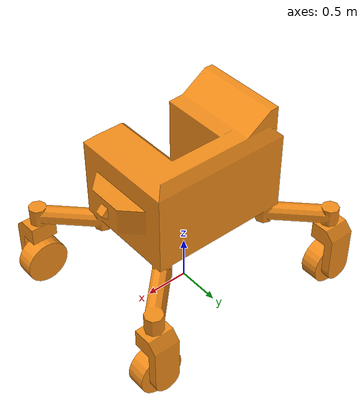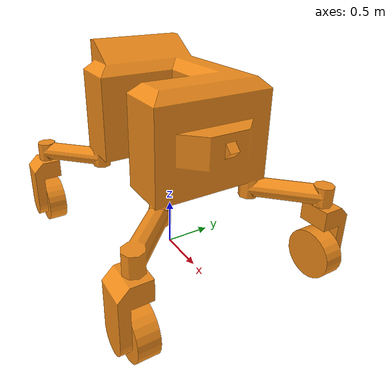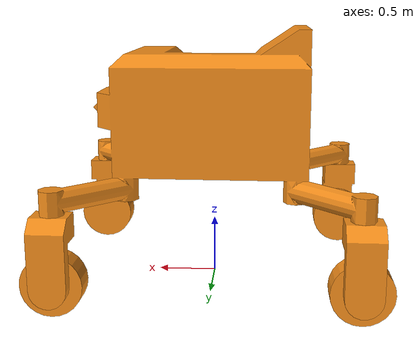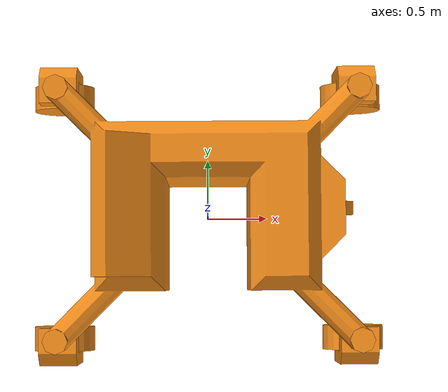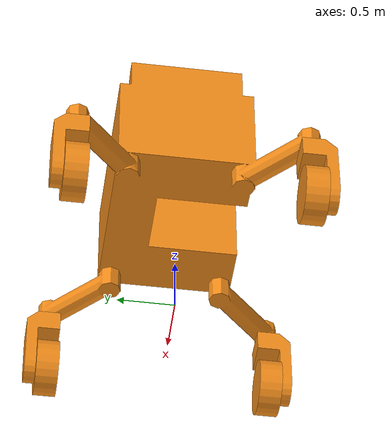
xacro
<robot name="bonirob_simple" xmlns:xacro="http://ros.org/wiki/xacro">
	<xacro:include filename="$(find mr_project)/urdf/bonirob_properties.xacro" />
	<xacro:include filename="$(find mr_project)/urdf/model/bonirob_simple.xacro" />
	<xacro:include filename="$(find mr_project)/urdf/sensor/3d_lidar.xacro"/>
</robot>

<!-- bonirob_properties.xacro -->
<robot name="bonirob_simple" xmlns:xacro="http://ros.org/wiki/xacro">

  <xacro:property name="scale_factor" value="0.8"/>
  <xacro:property name="base_x" value="2.4"/>
  <xacro:property name="base_y" value="2"/>
  <xacro:property name="base_z" value="1"/>
  <xacro:property name="wheel_pad_x" value="0.3"/>
  <xacro:property name="wheel_pad_y" value="0.2"/>
  <xacro:property name="wheel_pad_z" value="0.2"/>
  <xacro:property name="wheel_r" value="0.25"/>
  <xacro:property name="wheel_l" value="0.2"/>

  <xacro:property name="wheel_pad_clearance" value="0.1"/>
  <xacro:property name="ground_clearance" value="${2*wheel_r + wheel_pad_clearance + 2*wheel_pad_z}"/>
  <xacro:property name="init_center_height" value="${ground_clearance + base_z/2}"/>

  <xacro:property name="base_mass" value="60" />
  <xacro:property name="wheel_pad_mass" value="5" />
  <xacro:property name="wheel_mass" value="5" />

  <xacro:property name="wheel_pad_origin_z" value="${-base_z/2 -1.5*wheel_pad_z}"/>
  <xacro:property name="wheel_origin_z" value="${-wheel_pad_z/2 -wheel_r -wheel_pad_clearance}"/>

  <xacro:property name="lidar_x" value="1" />
  <xacro:property name="lidar_pitch" value="0.7854" />
</robot>

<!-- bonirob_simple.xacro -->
<robot name="bonirob_simple" xmlns:xacro="http://ros.org/wiki/xacro">

  <xacro:include filename="$(find mr_project)/urdf/bonirob_simple.gazebo" />

   <link name="base_footprint"/>

    <joint name="base_joint" type="fixed">
      <origin xyz="0 0 ${init_center_height}" rpy="0 0 0"/>
      <parent link="base_footprint"/>
      <child link="chassis"/>
    </joint>

  <!-- models -->
  <xacro:include filename="$(find mr_project)/urdf/model/chassis.xacro" />
  <xacro:include filename="$(find mr_project)/urdf/model/wheel_pad.xacro" />
  <xacro:include filename="$(find mr_project)/urdf/model/wheel.xacro" />

  <!-- joints -->
  <xacro:include filename="$(find mr_project)/urdf/model/steering_joints.xacro" />
  <xacro:include filename="$(find mr_project)/urdf/model/wheel_joints.xacro" />

  <!-- base_link -->
  <link name="chassis"> <xacro:chassis/> </link>

  <!-- wheel_pad -->
  <link name="wheel_pad_FR"> <xacro:wheel_pad yaw="0"/>      </link>
  <link name="wheel_pad_FL"> <xacro:wheel_pad yaw="${pi}"/> </link>
  <link name="wheel_pad_BR"> <xacro:wheel_pad yaw="0"/>      </link>
  <link name="wheel_pad_BL"> <xacro:wheel_pad yaw="${pi}"/> </link>

  <!-- wheel -->
  <link name="wheel_FR"> <xacro:wheel/> </link>
  <link name="wheel_FL"> <xacro:wheel/> </link>
  <link name="wheel_BR"> <xacro:wheel/> </link>
  <link name="wheel_BL"> <xacro:wheel/> </link>

  <!-- transmossions -->
  <xacro:macro name="transmission_block" params="trans_name joint_name">
    <transmission name="${trans_name}">
      <type>transmission_interface/SimpleTransmission</type>
      <joint name="${joint_name}">
        <hardwareInterface>hardware_interface/EffortJointInterface</hardwareInterface>
      </joint>
      <actuator name="motor">
        <hardwareInterface>hardware_interface/EffortJointInterface</hardwareInterface>
        <mechanicalReduction>1</mechanicalReduction>
      </actuator>
    </transmission>
  </xacro:macro>

   <xacro:transmission_block trans_name="trans1" joint_name="steering_FR"/>
   <xacro:transmission_block trans_name="trans1" joint_name="steering_FL"/>
   <xacro:transmission_block trans_name="trans1" joint_name="steering_BR"/>
   <xacro:transmission_block trans_name="trans1" joint_name="steering_BL"/>

   <xacro:transmission_block trans_name="trans2" joint_name="wheel_FR"/>
   <xacro:transmission_block trans_name="trans2" joint_name="wheel_FL"/>
   <xacro:transmission_block trans_name="trans2" joint_name="wheel_BR"/>
   <xacro:transmission_block trans_name="trans2" joint_name="wheel_BL"/>

</robot>

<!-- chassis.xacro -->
<robot name="bonirob_simple" xmlns:xacro="http://ros.org/wiki/xacro">

 <xacro:macro name="chassis">
    <collision>
      <origin xyz="0 0 0" rpy="0 0 0"/>
      <geometry>
        <box size="${base_x*scale_factor} ${base_y*scale_factor} ${base_z*scale_factor}"/>
      </geometry>
    </collision>
    <visual>
      <origin xyz="0 0 0" rpy="0 0 0"/>
      <geometry>
       <mesh filename="$(find mr_project)/urdf/model/meshes/br2.stl" scale="0.001 0.001 0.001"/>
      </geometry>
      <material name="orange"/>
    </visual>
    <inertial>
      <origin xyz="0 0 0" rpy="0 0 0"/>
      <mass value="${base_mass}"/>
      <inertia
        ixx="${base_mass / 12.0 * (base_y*base_y + base_z*base_z) * (scale_factor*scale_factor)}" ixy="0.0" ixz="0.0"
        iyy="${base_mass / 12.0 * (base_z*base_z + base_x*base_x) * (scale_factor*scale_factor)}" iyz="0.0"
        izz="${base_mass / 12.0 * (base_x*base_x + base_y*base_y) * (scale_factor*scale_factor)}"/>
    </inertial>
</xacro:macro>
</robot>

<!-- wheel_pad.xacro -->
<robot name="bonirob_simple" xmlns:xacro="http://ros.org/wiki/xacro">
 <xacro:macro name="wheel_pad" params='yaw'>
    <collision>
      <origin xyz="0 0 0" rpy="0 0 0"/>
      <geometry>
        <box size="${wheel_pad_x} ${wheel_pad_y} ${wheel_pad_z}"/>
      </geometry>
    </collision>
    <visual>
      <origin xyz="0 0 0" rpy="0 0 ${yaw}"/>
      <geometry>
        <mesh filename="$(find mr_project)/urdf/model/meshes/wheel_pad.stl" scale="0.001 0.001 0.001"/>
      </geometry>
      <material name="orange"/>
    </visual>
    <inertial>
      <origin xyz="0 0 0" rpy="0 0 0"/>
      <mass value="${wheel_pad_mass}"/>
      <inertia
        ixx="${wheel_pad_mass / 12.0 * (wheel_pad_y*wheel_pad_y + wheel_pad_z*wheel_pad_z)}"
        ixy="0.0" ixz="0.0" iyz="0.0"
        iyy="${wheel_pad_mass / 12.0 * (wheel_pad_z*wheel_pad_z + wheel_pad_x*wheel_pad_x)}"
        izz="${wheel_pad_mass / 12.0 * (wheel_pad_x*wheel_pad_x + wheel_pad_y*wheel_pad_y)}"/>
    </inertial>
</xacro:macro>
</robot>

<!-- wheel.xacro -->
<robot name="bonirob_simple" xmlns:xacro="http://ros.org/wiki/xacro">
 <xacro:macro name="wheel">
    <collision>
      <origin rpy="0 0 0" xyz="0 0 0"/>
      <geometry>
         <cylinder length="${wheel_l}" radius="${wheel_r}"/>
      </geometry>
    </collision>
    <visual>
      <origin rpy="0 0 0" xyz="0 0 0"/>
      <geometry>
         <cylinder length="${wheel_l}" radius="${wheel_r}"/>
      </geometry>
      <material name="orange"/>
    </visual>
    <inertial>
      <origin xyz="0 0 0" rpy="0 0 0"/>
      <mass value="${wheel_mass}"/>
      <inertia
        ixx="${wheel_mass * (wheel_r*wheel_r) / 4.0 + (wheel_l*wheel_l) / 12.0}" ixy="0.0" ixz="0.0"
        iyy="${wheel_mass * (wheel_r*wheel_r) / 4.0 + (wheel_l*wheel_l) / 12.0}" iyz="0.0"
        izz="${wheel_mass / 2.0 * (wheel_r*wheel_r)}"/>
    </inertial>
</xacro:macro>
</robot>

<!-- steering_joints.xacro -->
<robot name="bonirob_simple" xmlns:xacro="http://ros.org/wiki/xacro">

  <!-- steering joints -->
  <joint name="steering_FR" type="continuous">
    <origin xyz="${base_x/2} ${-base_y/2} ${wheel_pad_origin_z}"  	rpy="0 0 0"/>
    <parent link="chassis"/>
    <child link="wheel_pad_FR"/>
    <axis xyz="0 0 1" />
    <dynamics damping="0.7"/>
  </joint>

  <joint name="steering_FL" type="continuous">
    <origin xyz="${base_x/2} ${base_y/2} ${wheel_pad_origin_z}"  	rpy="0 0 0"/>
    <parent link="chassis"/>
    <child link="wheel_pad_FL"/>
    <axis xyz="0 0 1" />
    <dynamics damping="0.7"/>
  </joint>

  <joint name="steering_BR" type="continuous">
    <origin xyz="${-base_x/2} ${-base_y/2} ${wheel_pad_origin_z}" 	rpy="0 0 0"/>
    <parent link="chassis"/>
    <child link="wheel_pad_BR"/>
    <axis xyz="0 0 1" />
    <dynamics damping="0.7"/>
  </joint>

    <joint name="steering_BL" type="continuous">
     <origin xyz="${-base_x/2} ${base_y/2} ${wheel_pad_origin_z}" 	rpy="0 0 0"/>
    <parent link="chassis"/>
    <child link="wheel_pad_BL"/>
    <axis xyz="0 0 1" />
    <dynamics damping="0.7"/>
  </joint>

</robot>

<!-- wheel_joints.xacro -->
<robot name="bonirob_simple" xmlns:xacro="http://ros.org/wiki/xacro">

  <!-- wheel joints -->
  <joint name="wheel_FR" type="continuous">
    <origin xyz="0 0 ${wheel_origin_z}" rpy="${-pi/2} 0 0"/>
    <parent link="wheel_pad_FR"/>
    <child link="wheel_FR"/>
    <axis xyz="0 0 1" />
    <dynamics damping="0.7"/>
  </joint>

  <joint name="wheel_FL" type="continuous">
    <origin xyz="0 0 ${wheel_origin_z}" rpy="${-pi/2} 0 0"/>
    <parent link="wheel_pad_FL"/>
    <child link="wheel_FL"/>
    <axis xyz="0 0 1" />
    <dynamics damping="0.7"/>
  </joint>

  <joint name="wheel_BR" type="continuous">
    <origin xyz="0 0 ${wheel_origin_z}" rpy="${-pi/2} 0 0"/>
    <parent link="wheel_pad_BR"/>
    <child link="wheel_BR"/>
    <axis xyz="0 0 1" />
    <dynamics damping="0.7"/>
  </joint>

  <joint name="wheel_BL" type="continuous">
    <origin xyz="0 0 ${wheel_origin_z}" rpy="${-pi/2} 0 0"/>
    <parent link="wheel_pad_BL"/>
    <child link="wheel_BL"/>
    <axis xyz="0 0 1" />
    <dynamics damping="0.7"/>
  </joint>

</robot>

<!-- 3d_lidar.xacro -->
<robot name="3d_lidar" xmlns:xacro="http://ros.org/wiki/xacro">
    <joint name="3d_lidar_joint" type="fixed">
     <origin xyz="${lidar_x} 0 0" rpy="0 ${lidar_pitch} 0"/>
     <parent link="chassis"/>
     <child link="3d_lidar"/>
    </joint>

   <link name="3d_lidar">
    <collision>
      <origin xyz="0 0 0" rpy="0 0 0"/>
      <geometry>
        <box size="0.1 0.1 0.1"/>
      </geometry>
    </collision>
    <visual>
      <origin xyz="0 0 0" rpy="0 0 0"/>
      <geometry>
       <box size="0.1 0.1 0.1"/>
      </geometry>
      <material name="orange"/>
    </visual>
     <inertial>
      <origin xyz="0 0 0" rpy="0 0 0"/>
      <mass value="1"/>
      <inertia
        ixx="1" ixy="0.0" ixz="0.0"
        iyy="1" iyz="0.0"
        izz="1"/>
    </inertial>
   </link>

   <gazebo reference="3d_lidar">
   <material>Gazebo/Black</material>
   <sensor name="sensor_ray" type="ray">
      <pose>0.0 0.0 0.0 0.0 0.0 0.0</pose>
      <visualize>true</visualize>
      <ray>
        <scan>
           <horizontal>
              <samples>50</samples>
              <resolution>1.0</resolution>
              <min_angle>-0.4</min_angle>
              <max_angle>0.4</max_angle>
           </horizontal>
           <vertical>
              <samples>50</samples>
              <resolution>1.0</resolution>
              <min_angle>-0.2618</min_angle>
              <max_angle>0.2618</max_angle>
           </vertical>
        </scan>
        <range>
           <min>0.5</min>
           <max>50.0</max>
           <resolution>0.01</resolution>
        </range>
      </ray>
      <!-- test plugin -->
      <plugin name="block_laser_plugin" filename="libgazebo_ros_block_laser.so">
        <gaussianNoise>0.00</gaussianNoise>
        <alwaysOn>true</alwaysOn>
        <updateRate>20</updateRate>
        <topicName>block_laser</topicName>
        <frameName>3d_lidar</frameName>
      </plugin>
      <always_on>true</always_on>
      <update_rate>10</update_rate>
    </sensor>

   </gazebo>
</robot>
